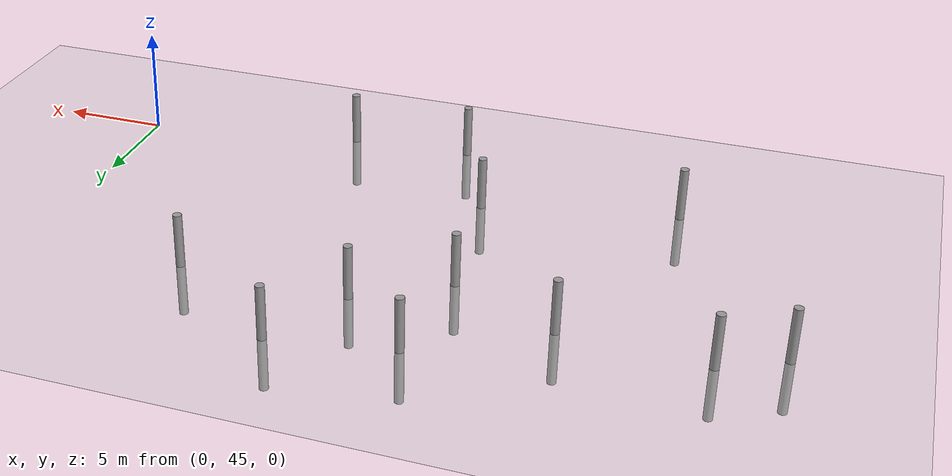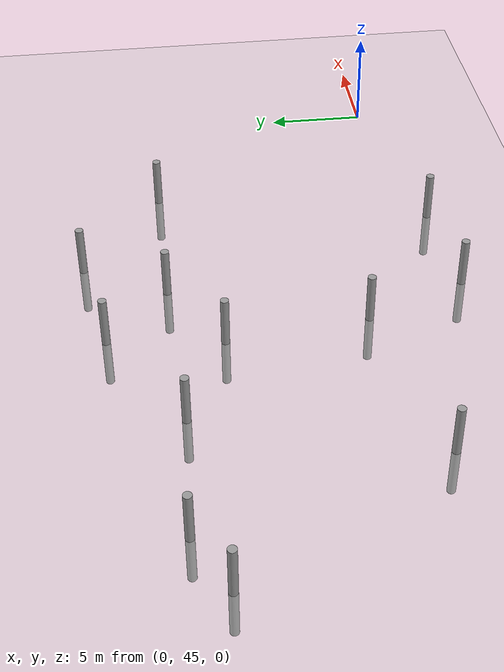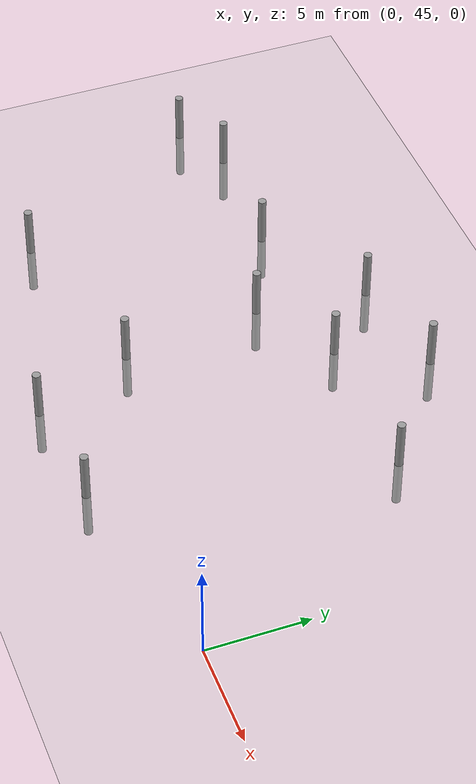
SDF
<sdf version="1.6">
 <world name="default">
  <model name="ground_plane">
   <static>1</static>
   <link name="link">
    <collision name="collision">
     <geometry><plane><normal>0 0 1</normal><size>100 100</size></plane></geometry>
     <surface><friction><ode><mu>100</mu><mu2>50</mu2></ode></friction></surface>
    </collision>
    <visual name="visual">
     <cast_shadows>0</cast_shadows>
     <geometry><plane><normal>0 0 1</normal><size>100 100</size></plane></geometry>
     <material>
      <script><uri>file://media/materials/scripts/gazebo.material</uri><name>Gazebo/Grey</name></script>
     </material>
    </visual>
   </link>
  </model>
  <model name="empty_pillars_0">
   <model name="empty_pillar_clone_10">
    <link name="link">
     <inertial>
      <mass>1</mass>
      <inertia><ixx>0.145833</ixx><ixy>0</ixy><ixz>0</ixz><iyy>0.145833</iyy><iyz>0</iyz><izz>0.125</izz></inertia>
     </inertial>
     <visual name="visual">
      <geometry><cylinder><radius>0.2</radius><length>5</length></cylinder></geometry>
      <material>
       <script><name>Gazebo/Grey</name><uri>file://media/materials/scripts/gazebo.material</uri></script>
       <shader type="vertex"><normal_map>__default__</normal_map></shader>
       <ambient>0.3 0.3 0.3 1</ambient>
       <diffuse>0.7 0.7 0.7 1</diffuse>
       <specular>0.01 0.01 0.01 1</specular>
       <emissive>0 0 0 1</emissive>
      </material>
     </visual>
     <collision name="collision">
      <geometry><cylinder><radius>0.05</radius><length>5</length></cylinder></geometry>
      <surface>
       <friction>
        <ode><mu>1</mu><mu2>1</mu2><fdir1>0 0 0</fdir1><slip1>0</slip1><slip2>0</slip2></ode>
        <torsional>
         <coefficient>1</coefficient>
         <patch_radius>0</patch_radius>
         <surface_radius>0</surface_radius>
         <use_patch_radius>1</use_patch_radius>
         <ode><slip>0</slip></ode>
        </torsional>
       </friction>
       <bounce><restitution_coefficient>0</restitution_coefficient><threshold>1e+06</threshold></bounce>
       <contact>
        <collide_without_contact>0</collide_without_contact>
        <collide_without_contact_bitmask>1</collide_without_contact_bitmask>
        <collide_bitmask>1</collide_bitmask>
        <ode>
         <soft_cfm>0</soft_cfm>
         <soft_erp>0.2</soft_erp>
         <kp>1e+13</kp>
         <kd>1</kd>
         <max_vel>0.01</max_vel>
         <min_depth>0</min_depth>
        </ode>
        <bullet>
         <split_impulse>1</split_impulse>
         <split_impulse_penetration_threshold>-0.01</split_impulse_penetration_threshold>
         <soft_cfm>0</soft_cfm>
         <soft_erp>0.2</soft_erp>
         <kp>1e+13</kp>
         <kd>1</kd>
        </bullet>
       </contact>
      </surface>
     </collision>
    </link>
    <static>0</static>
    <pose>13.5083 -16.8403 0 0 -0 0</pose>
   </model>
   <model name="empty_pillar_clone_11">
    <link name="link">
     <inertial>
      <mass>1</mass>
      <inertia><ixx>0.145833</ixx><ixy>0</ixy><ixz>0</ixz><iyy>0.145833</iyy><iyz>0</iyz><izz>0.125</izz></inertia>
     </inertial>
     <visual name="visual">
      <geometry><cylinder><radius>0.2</radius><length>5</length></cylinder></geometry>
      <material>
       <script><name>Gazebo/Grey</name><uri>file://media/materials/scripts/gazebo.material</uri></script>
       <shader type="vertex"><normal_map>__default__</normal_map></shader>
       <ambient>0.3 0.3 0.3 1</ambient>
       <diffuse>0.7 0.7 0.7 1</diffuse>
       <specular>0.01 0.01 0.01 1</specular>
       <emissive>0 0 0 1</emissive>
      </material>
     </visual>
     <collision name="collision">
      <geometry><cylinder><radius>0.05</radius><length>5</length></cylinder></geometry>
      <surface>
       <friction>
        <ode><mu>1</mu><mu2>1</mu2><fdir1>0 0 0</fdir1><slip1>0</slip1><slip2>0</slip2></ode>
        <torsional>
         <coefficient>1</coefficient>
         <patch_radius>0</patch_radius>
         <surface_radius>0</surface_radius>
         <use_patch_radius>1</use_patch_radius>
         <ode><slip>0</slip></ode>
        </torsional>
       </friction>
       <bounce><restitution_coefficient>0</restitution_coefficient><threshold>1e+06</threshold></bounce>
       <contact>
        <collide_without_contact>0</collide_without_contact>
        <collide_without_contact_bitmask>1</collide_without_contact_bitmask>
        <collide_bitmask>1</collide_bitmask>
        <ode>
         <soft_cfm>0</soft_cfm>
         <soft_erp>0.2</soft_erp>
         <kp>1e+13</kp>
         <kd>1</kd>
         <max_vel>0.01</max_vel>
         <min_depth>0</min_depth>
        </ode>
        <bullet>
         <split_impulse>1</split_impulse>
         <split_impulse_penetration_threshold>-0.01</split_impulse_penetration_threshold>
         <soft_cfm>0</soft_cfm>
         <soft_erp>0.2</soft_erp>
         <kp>1e+13</kp>
         <kd>1</kd>
        </bullet>
       </contact>
      </surface>
     </collision>
    </link>
    <static>0</static>
    <pose>7.98536 -17.8403 0 0 -0 0</pose>
   </model>
   <model name="empty_pillar_clone_12">
    <link name="link">
     <inertial>
      <mass>1</mass>
      <inertia><ixx>0.145833</ixx><ixy>0</ixy><ixz>0</ixz><iyy>0.145833</iyy><iyz>0</iyz><izz>0.125</izz></inertia>
     </inertial>
     <visual name="visual">
      <geometry><cylinder><radius>0.2</radius><length>5</length></cylinder></geometry>
      <material>
       <script><name>Gazebo/Grey</name><uri>file://media/materials/scripts/gazebo.material</uri></script>
       <shader type="vertex"><normal_map>__default__</normal_map></shader>
       <ambient>0.3 0.3 0.3 1</ambient>
       <diffuse>0.7 0.7 0.7 1</diffuse>
       <specular>0.01 0.01 0.01 1</specular>
       <emissive>0 0 0 1</emissive>
      </material>
     </visual>
     <collision name="collision">
      <geometry><cylinder><radius>0.05</radius><length>5</length></cylinder></geometry>
      <surface>
       <friction>
        <ode><mu>1</mu><mu2>1</mu2><fdir1>0 0 0</fdir1><slip1>0</slip1><slip2>0</slip2></ode>
        <torsional>
         <coefficient>1</coefficient>
         <patch_radius>0</patch_radius>
         <surface_radius>0</surface_radius>
         <use_patch_radius>1</use_patch_radius>
         <ode><slip>0</slip></ode>
        </torsional>
       </friction>
       <bounce><restitution_coefficient>0</restitution_coefficient><threshold>1e+06</threshold></bounce>
       <contact>
        <collide_without_contact>0</collide_without_contact>
        <collide_without_contact_bitmask>1</collide_without_contact_bitmask>
        <collide_bitmask>1</collide_bitmask>
        <ode>
         <soft_cfm>0</soft_cfm>
         <soft_erp>0.2</soft_erp>
         <kp>1e+13</kp>
         <kd>1</kd>
         <max_vel>0.01</max_vel>
         <min_depth>0</min_depth>
        </ode>
        <bullet>
         <split_impulse>1</split_impulse>
         <split_impulse_penetration_threshold>-0.01</split_impulse_penetration_threshold>
         <soft_cfm>0</soft_cfm>
         <soft_erp>0.2</soft_erp>
         <kp>1e+13</kp>
         <kd>1</kd>
        </bullet>
       </contact>
      </surface>
     </collision>
    </link>
    <static>0</static>
    <pose>-4.01464 -20.8403 0 0 -0 0</pose>
   </model>
   <model name="empty_pillar_clone_34">
    <link name="link">
     <inertial>
      <mass>1</mass>
      <inertia><ixx>0.145833</ixx><ixy>0</ixy><ixz>0</ixz><iyy>0.145833</iyy><iyz>0</iyz><izz>0.125</izz></inertia>
     </inertial>
     <visual name="visual">
      <geometry><cylinder><radius>0.2</radius><length>5</length></cylinder></geometry>
      <material>
       <script><name>Gazebo/Grey</name><uri>file://media/materials/scripts/gazebo.material</uri></script>
       <shader type="vertex"><normal_map>__default__</normal_map></shader>
       <ambient>0.3 0.3 0.3 1</ambient>
       <diffuse>0.7 0.7 0.7 1</diffuse>
       <specular>0.01 0.01 0.01 1</specular>
       <emissive>0 0 0 1</emissive>
      </material>
     </visual>
     <collision name="collision">
      <geometry><cylinder><radius>0.05</radius><length>5</length></cylinder></geometry>
      <surface>
       <friction>
        <ode><mu>1</mu><mu2>1</mu2><fdir1>0 0 0</fdir1><slip1>0</slip1><slip2>0</slip2></ode>
        <torsional>
         <coefficient>1</coefficient>
         <patch_radius>0</patch_radius>
         <surface_radius>0</surface_radius>
         <use_patch_radius>1</use_patch_radius>
         <ode><slip>0</slip></ode>
        </torsional>
       </friction>
       <bounce><restitution_coefficient>0</restitution_coefficient><threshold>1e+06</threshold></bounce>
       <contact>
        <collide_without_contact>0</collide_without_contact>
        <collide_without_contact_bitmask>1</collide_without_contact_bitmask>
        <collide_bitmask>1</collide_bitmask>
        <ode>
         <soft_cfm>0</soft_cfm>
         <soft_erp>0.2</soft_erp>
         <kp>1e+13</kp>
         <kd>1</kd>
         <max_vel>0.01</max_vel>
         <min_depth>0</min_depth>
        </ode>
        <bullet>
         <split_impulse>1</split_impulse>
         <split_impulse_penetration_threshold>-0.01</split_impulse_penetration_threshold>
         <soft_cfm>0</soft_cfm>
         <soft_erp>0.2</soft_erp>
         <kp>1e+13</kp>
         <kd>1</kd>
        </bullet>
       </contact>
      </surface>
     </collision>
    </link>
    <static>0</static>
    <pose>19.0861 -20.8946 0 0 -0 0</pose>
   </model>
   <model name="empty_pillar_clone_44">
    <link name="link">
     <inertial>
      <mass>1</mass>
      <inertia><ixx>0.145833</ixx><ixy>0</ixy><ixz>0</ixz><iyy>0.145833</iyy><iyz>0</iyz><izz>0.125</izz></inertia>
     </inertial>
     <visual name="visual">
      <geometry><cylinder><radius>0.2</radius><length>5</length></cylinder></geometry>
      <material>
       <script><name>Gazebo/Grey</name><uri>file://media/materials/scripts/gazebo.material</uri></script>
       <shader type="vertex"><normal_map>__default__</normal_map></shader>
       <ambient>0.3 0.3 0.3 1</ambient>
       <diffuse>0.7 0.7 0.7 1</diffuse>
       <specular>0.01 0.01 0.01 1</specular>
       <emissive>0 0 0 1</emissive>
      </material>
     </visual>
     <collision name="collision">
      <geometry><cylinder><radius>0.05</radius><length>5</length></cylinder></geometry>
      <surface>
       <friction>
        <ode><mu>1</mu><mu2>1</mu2><fdir1>0 0 0</fdir1><slip1>0</slip1><slip2>0</slip2></ode>
        <torsional>
         <coefficient>1</coefficient>
         <patch_radius>0</patch_radius>
         <surface_radius>0</surface_radius>
         <use_patch_radius>1</use_patch_radius>
         <ode><slip>0</slip></ode>
        </torsional>
       </friction>
       <bounce><restitution_coefficient>0</restitution_coefficient><threshold>1e+06</threshold></bounce>
       <contact>
        <collide_without_contact>0</collide_without_contact>
        <collide_without_contact_bitmask>1</collide_without_contact_bitmask>
        <collide_bitmask>1</collide_bitmask>
        <ode>
         <soft_cfm>0</soft_cfm>
         <soft_erp>0.2</soft_erp>
         <kp>1e+13</kp>
         <kd>1</kd>
         <max_vel>0.01</max_vel>
         <min_depth>0</min_depth>
        </ode>
        <bullet>
         <split_impulse>1</split_impulse>
         <split_impulse_penetration_threshold>-0.01</split_impulse_penetration_threshold>
         <soft_cfm>0</soft_cfm>
         <soft_erp>0.2</soft_erp>
         <kp>1e+13</kp>
         <kd>1</kd>
        </bullet>
       </contact>
      </surface>
     </collision>
    </link>
    <static>0</static>
    <pose>-6.78285 -22.2729 0 0 -0 0</pose>
   </model>
   <model name="empty_pillar_clone_46">
    <link name="link">
     <inertial>
      <mass>1</mass>
      <inertia><ixx>0.145833</ixx><ixy>0</ixy><ixz>0</ixz><iyy>0.145833</iyy><iyz>0</iyz><izz>0.125</izz></inertia>
     </inertial>
     <visual name="visual">
      <geometry><cylinder><radius>0.2</radius><length>5</length></cylinder></geometry>
      <material>
       <script><name>Gazebo/Grey</name><uri>file://media/materials/scripts/gazebo.material</uri></script>
       <shader type="vertex"><normal_map>__default__</normal_map></shader>
       <ambient>0.3 0.3 0.3 1</ambient>
       <diffuse>0.7 0.7 0.7 1</diffuse>
       <specular>0.01 0.01 0.01 1</specular>
       <emissive>0 0 0 1</emissive>
      </material>
     </visual>
     <collision name="collision">
      <geometry><cylinder><radius>0.05</radius><length>5</length></cylinder></geometry>
      <surface>
       <friction>
        <ode><mu>1</mu><mu2>1</mu2><fdir1>0 0 0</fdir1><slip1>0</slip1><slip2>0</slip2></ode>
        <torsional>
         <coefficient>1</coefficient>
         <patch_radius>0</patch_radius>
         <surface_radius>0</surface_radius>
         <use_patch_radius>1</use_patch_radius>
         <ode><slip>0</slip></ode>
        </torsional>
       </friction>
       <bounce><restitution_coefficient>0</restitution_coefficient><threshold>1e+06</threshold></bounce>
       <contact>
        <collide_without_contact>0</collide_without_contact>
        <collide_without_contact_bitmask>1</collide_without_contact_bitmask>
        <collide_bitmask>1</collide_bitmask>
        <ode>
         <soft_cfm>0</soft_cfm>
         <soft_erp>0.2</soft_erp>
         <kp>1e+13</kp>
         <kd>1</kd>
         <max_vel>0.01</max_vel>
         <min_depth>0</min_depth>
        </ode>
        <bullet>
         <split_impulse>1</split_impulse>
         <split_impulse_penetration_threshold>-0.01</split_impulse_penetration_threshold>
         <soft_cfm>0</soft_cfm>
         <soft_erp>0.2</soft_erp>
         <kp>1e+13</kp>
         <kd>1</kd>
        </bullet>
       </contact>
      </surface>
     </collision>
    </link>
    <static>0</static>
    <pose>2.45033 -21.185 0 0 -0 0</pose>
   </model>
   <model name="empty_pillar_clone_52">
    <link name="link">
     <inertial>
      <mass>1</mass>
      <inertia><ixx>0.145833</ixx><ixy>0</ixy><ixz>0</ixz><iyy>0.145833</iyy><iyz>0</iyz><izz>0.125</izz></inertia>
     </inertial>
     <visual name="visual">
      <geometry><cylinder><radius>0.2</radius><length>5</length></cylinder></geometry>
      <material>
       <script><name>Gazebo/Grey</name><uri>file://media/materials/scripts/gazebo.material</uri></script>
       <shader type="vertex"><normal_map>__default__</normal_map></shader>
       <ambient>0.3 0.3 0.3 1</ambient>
       <diffuse>0.7 0.7 0.7 1</diffuse>
       <specular>0.01 0.01 0.01 1</specular>
       <emissive>0 0 0 1</emissive>
      </material>
     </visual>
     <collision name="collision">
      <geometry><cylinder><radius>0.05</radius><length>5</length></cylinder></geometry>
      <surface>
       <friction>
        <ode><mu>1</mu><mu2>1</mu2><fdir1>0 0 0</fdir1><slip1>0</slip1><slip2>0</slip2></ode>
        <torsional>
         <coefficient>1</coefficient>
         <patch_radius>0</patch_radius>
         <surface_radius>0</surface_radius>
         <use_patch_radius>1</use_patch_radius>
         <ode><slip>0</slip></ode>
        </torsional>
       </friction>
       <bounce><restitution_coefficient>0</restitution_coefficient><threshold>1e+06</threshold></bounce>
       <contact>
        <collide_without_contact>0</collide_without_contact>
        <collide_without_contact_bitmask>1</collide_without_contact_bitmask>
        <collide_bitmask>1</collide_bitmask>
        <ode>
         <soft_cfm>0</soft_cfm>
         <soft_erp>0.2</soft_erp>
         <kp>1e+13</kp>
         <kd>1</kd>
         <max_vel>0.01</max_vel>
         <min_depth>0</min_depth>
        </ode>
        <bullet>
         <split_impulse>1</split_impulse>
         <split_impulse_penetration_threshold>-0.01</split_impulse_penetration_threshold>
         <soft_cfm>0</soft_cfm>
         <soft_erp>0.2</soft_erp>
         <kp>1e+13</kp>
         <kd>1</kd>
        </bullet>
       </contact>
      </surface>
     </collision>
    </link>
    <static>0</static>
    <pose>11.2833 -20.8743 0 0 -0 0</pose>
   </model>
   <model name="empty_pillar_clone_53">
    <link name="link">
     <inertial>
      <mass>1</mass>
      <inertia><ixx>0.145833</ixx><ixy>0</ixy><ixz>0</ixz><iyy>0.145833</iyy><iyz>0</iyz><izz>0.125</izz></inertia>
     </inertial>
     <visual name="visual">
      <geometry><cylinder><radius>0.2</radius><length>5</length></cylinder></geometry>
      <material>
       <script><name>Gazebo/Grey</name><uri>file://media/materials/scripts/gazebo.material</uri></script>
       <shader type="vertex"><normal_map>__default__</normal_map></shader>
       <ambient>0.3 0.3 0.3 1</ambient>
       <diffuse>0.7 0.7 0.7 1</diffuse>
       <specular>0.01 0.01 0.01 1</specular>
       <emissive>0 0 0 1</emissive>
      </material>
     </visual>
     <collision name="collision">
      <geometry><cylinder><radius>0.05</radius><length>5</length></cylinder></geometry>
      <surface>
       <friction>
        <ode><mu>1</mu><mu2>1</mu2><fdir1>0 0 0</fdir1><slip1>0</slip1><slip2>0</slip2></ode>
        <torsional>
         <coefficient>1</coefficient>
         <patch_radius>0</patch_radius>
         <surface_radius>0</surface_radius>
         <use_patch_radius>1</use_patch_radius>
         <ode><slip>0</slip></ode>
        </torsional>
       </friction>
       <bounce><restitution_coefficient>0</restitution_coefficient><threshold>1e+06</threshold></bounce>
       <contact>
        <collide_without_contact>0</collide_without_contact>
        <collide_without_contact_bitmask>1</collide_without_contact_bitmask>
        <collide_bitmask>1</collide_bitmask>
        <ode>
         <soft_cfm>0</soft_cfm>
         <soft_erp>0.2</soft_erp>
         <kp>1e+13</kp>
         <kd>1</kd>
         <max_vel>0.01</max_vel>
         <min_depth>0</min_depth>
        </ode>
        <bullet>
         <split_impulse>1</split_impulse>
         <split_impulse_penetration_threshold>-0.01</split_impulse_penetration_threshold>
         <soft_cfm>0</soft_cfm>
         <soft_erp>0.2</soft_erp>
         <kp>1e+13</kp>
         <kd>1</kd>
        </bullet>
       </contact>
      </surface>
     </collision>
    </link>
    <static>0</static>
    <pose>7.32522 -23.3523 0 0 -0 0</pose>
   </model>
   <static>0</static>
   <pose>-26.2243 78.0173 0 0 -0 0</pose>
  </model>
  <model name="empty_pillars_5">
   <model name="empty_pillar_clone_23">
    <link name="link">
     <inertial>
      <mass>1</mass>
      <inertia><ixx>0.145833</ixx><ixy>0</ixy><ixz>0</ixz><iyy>0.145833</iyy><iyz>0</iyz><izz>0.125</izz></inertia>
     </inertial>
     <visual name="visual">
      <geometry><cylinder><radius>0.2</radius><length>5</length></cylinder></geometry>
      <material>
       <script><name>Gazebo/Grey</name><uri>file://media/materials/scripts/gazebo.material</uri></script>
       <shader type="vertex"><normal_map>__default__</normal_map></shader>
       <ambient>0.3 0.3 0.3 1</ambient>
       <diffuse>0.7 0.7 0.7 1</diffuse>
       <specular>0.01 0.01 0.01 1</specular>
       <emissive>0 0 0 1</emissive>
      </material>
     </visual>
     <collision name="collision">
      <geometry><cylinder><radius>0.05</radius><length>5</length></cylinder></geometry>
      <surface>
       <friction>
        <ode><mu>1</mu><mu2>1</mu2><fdir1>0 0 0</fdir1><slip1>0</slip1><slip2>0</slip2></ode>
        <torsional>
         <coefficient>1</coefficient>
         <patch_radius>0</patch_radius>
         <surface_radius>0</surface_radius>
         <use_patch_radius>1</use_patch_radius>
         <ode><slip>0</slip></ode>
        </torsional>
       </friction>
       <bounce><restitution_coefficient>0</restitution_coefficient><threshold>1e+06</threshold></bounce>
       <contact>
        <collide_without_contact>0</collide_without_contact>
        <collide_without_contact_bitmask>1</collide_without_contact_bitmask>
        <collide_bitmask>1</collide_bitmask>
        <ode>
         <soft_cfm>0</soft_cfm>
         <soft_erp>0.2</soft_erp>
         <kp>1e+13</kp>
         <kd>1</kd>
         <max_vel>0.01</max_vel>
         <min_depth>0</min_depth>
        </ode>
        <bullet>
         <split_impulse>1</split_impulse>
         <split_impulse_penetration_threshold>-0.01</split_impulse_penetration_threshold>
         <soft_cfm>0</soft_cfm>
         <soft_erp>0.2</soft_erp>
         <kp>1e+13</kp>
         <kd>1</kd>
        </bullet>
       </contact>
      </surface>
     </collision>
    </link>
    <static>0</static>
    <pose>-1.21984 18.1273 0 0 -0 0</pose>
   </model>
   <model name="empty_pillar_clone_26">
    <link name="link">
     <inertial>
      <mass>1</mass>
      <inertia><ixx>0.145833</ixx><ixy>0</ixy><ixz>0</ixz><iyy>0.145833</iyy><iyz>0</iyz><izz>0.125</izz></inertia>
     </inertial>
     <visual name="visual">
      <geometry><cylinder><radius>0.2</radius><length>5</length></cylinder></geometry>
      <material>
       <script><name>Gazebo/Grey</name><uri>file://media/materials/scripts/gazebo.material</uri></script>
       <shader type="vertex"><normal_map>__default__</normal_map></shader>
       <ambient>0.3 0.3 0.3 1</ambient>
       <diffuse>0.7 0.7 0.7 1</diffuse>
       <specular>0.01 0.01 0.01 1</specular>
       <emissive>0 0 0 1</emissive>
      </material>
     </visual>
     <collision name="collision">
      <geometry><cylinder><radius>0.05</radius><length>5</length></cylinder></geometry>
      <surface>
       <friction>
        <ode><mu>1</mu><mu2>1</mu2><fdir1>0 0 0</fdir1><slip1>0</slip1><slip2>0</slip2></ode>
        <torsional>
         <coefficient>1</coefficient>
         <patch_radius>0</patch_radius>
         <surface_radius>0</surface_radius>
         <use_patch_radius>1</use_patch_radius>
         <ode><slip>0</slip></ode>
        </torsional>
       </friction>
       <bounce><restitution_coefficient>0</restitution_coefficient><threshold>1e+06</threshold></bounce>
       <contact>
        <collide_without_contact>0</collide_without_contact>
        <collide_without_contact_bitmask>1</collide_without_contact_bitmask>
        <collide_bitmask>1</collide_bitmask>
        <ode>
         <soft_cfm>0</soft_cfm>
         <soft_erp>0.2</soft_erp>
         <kp>1e+13</kp>
         <kd>1</kd>
         <max_vel>0.01</max_vel>
         <min_depth>0</min_depth>
        </ode>
        <bullet>
         <split_impulse>1</split_impulse>
         <split_impulse_penetration_threshold>-0.01</split_impulse_penetration_threshold>
         <soft_cfm>0</soft_cfm>
         <soft_erp>0.2</soft_erp>
         <kp>1e+13</kp>
         <kd>1</kd>
        </bullet>
       </contact>
      </surface>
     </collision>
    </link>
    <static>0</static>
    <pose>7.70652 20.1444 0 0 -0 0</pose>
   </model>
   <model name="empty_pillar_clone_28">
    <link name="link">
     <inertial>
      <mass>1</mass>
      <inertia><ixx>0.145833</ixx><ixy>0</ixy><ixz>0</ixz><iyy>0.145833</iyy><iyz>0</iyz><izz>0.125</izz></inertia>
     </inertial>
     <visual name="visual">
      <geometry><cylinder><radius>0.2</radius><length>5</length></cylinder></geometry>
      <material>
       <script><name>Gazebo/Grey</name><uri>file://media/materials/scripts/gazebo.material</uri></script>
       <shader type="vertex"><normal_map>__default__</normal_map></shader>
       <ambient>0.3 0.3 0.3 1</ambient>
       <diffuse>0.7 0.7 0.7 1</diffuse>
       <specular>0.01 0.01 0.01 1</specular>
       <emissive>0 0 0 1</emissive>
      </material>
     </visual>
     <collision name="collision">
      <geometry><cylinder><radius>0.05</radius><length>5</length></cylinder></geometry>
      <surface>
       <friction>
        <ode><mu>1</mu><mu2>1</mu2><fdir1>0 0 0</fdir1><slip1>0</slip1><slip2>0</slip2></ode>
        <torsional>
         <coefficient>1</coefficient>
         <patch_radius>0</patch_radius>
         <surface_radius>0</surface_radius>
         <use_patch_radius>1</use_patch_radius>
         <ode><slip>0</slip></ode>
        </torsional>
       </friction>
       <bounce><restitution_coefficient>0</restitution_coefficient><threshold>1e+06</threshold></bounce>
       <contact>
        <collide_without_contact>0</collide_without_contact>
        <collide_without_contact_bitmask>1</collide_without_contact_bitmask>
        <collide_bitmask>1</collide_bitmask>
        <ode>
         <soft_cfm>0</soft_cfm>
         <soft_erp>0.2</soft_erp>
         <kp>1e+13</kp>
         <kd>1</kd>
         <max_vel>0.01</max_vel>
         <min_depth>0</min_depth>
        </ode>
        <bullet>
         <split_impulse>1</split_impulse>
         <split_impulse_penetration_threshold>-0.01</split_impulse_penetration_threshold>
         <soft_cfm>0</soft_cfm>
         <soft_erp>0.2</soft_erp>
         <kp>1e+13</kp>
         <kd>1</kd>
        </bullet>
       </contact>
      </surface>
     </collision>
    </link>
    <static>0</static>
    <pose>15.5447 15.5867 0 0 -0 0</pose>
   </model>
   <model name="empty_pillar_clone_49">
    <link name="link">
     <inertial>
      <mass>1</mass>
      <inertia><ixx>0.145833</ixx><ixy>0</ixy><ixz>0</ixz><iyy>0.145833</iyy><iyz>0</iyz><izz>0.125</izz></inertia>
     </inertial>
     <visual name="visual">
      <geometry><cylinder><radius>0.2</radius><length>5</length></cylinder></geometry>
      <material>
       <script><name>Gazebo/Grey</name><uri>file://media/materials/scripts/gazebo.material</uri></script>
       <shader type="vertex"><normal_map>__default__</normal_map></shader>
       <ambient>0.3 0.3 0.3 1</ambient>
       <diffuse>0.7 0.7 0.7 1</diffuse>
       <specular>0.01 0.01 0.01 1</specular>
       <emissive>0 0 0 1</emissive>
      </material>
     </visual>
     <collision name="collision">
      <geometry><cylinder><radius>0.05</radius><length>5</length></cylinder></geometry>
      <surface>
       <friction>
        <ode><mu>1</mu><mu2>1</mu2><fdir1>0 0 0</fdir1><slip1>0</slip1><slip2>0</slip2></ode>
        <torsional>
         <coefficient>1</coefficient>
         <patch_radius>0</patch_radius>
         <surface_radius>0</surface_radius>
         <use_patch_radius>1</use_patch_radius>
         <ode><slip>0</slip></ode>
        </torsional>
       </friction>
       <bounce><restitution_coefficient>0</restitution_coefficient><threshold>1e+06</threshold></bounce>
       <contact>
        <collide_without_contact>0</collide_without_contact>
        <collide_without_contact_bitmask>1</collide_without_contact_bitmask>
        <collide_bitmask>1</collide_bitmask>
        <ode>
         <soft_cfm>0</soft_cfm>
         <soft_erp>0.2</soft_erp>
         <kp>1e+13</kp>
         <kd>1</kd>
         <max_vel>0.01</max_vel>
         <min_depth>0</min_depth>
        </ode>
        <bullet>
         <split_impulse>1</split_impulse>
         <split_impulse_penetration_threshold>-0.01</split_impulse_penetration_threshold>
         <soft_cfm>0</soft_cfm>
         <soft_erp>0.2</soft_erp>
         <kp>1e+13</kp>
         <kd>1</kd>
        </bullet>
       </contact>
      </surface>
     </collision>
    </link>
    <static>0</static>
    <pose>9.84768 15.1425 0 0 -0 0</pose>
   </model>
   <static>0</static>
   <pose>-25.786 27.5577 0 0 -0 0</pose>
  </model>
 </world>
</sdf>
